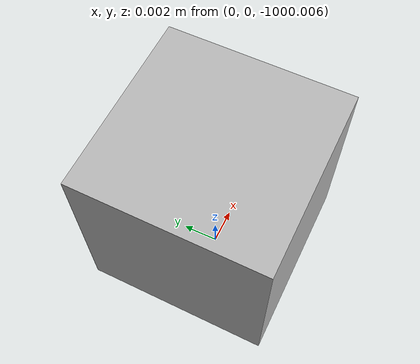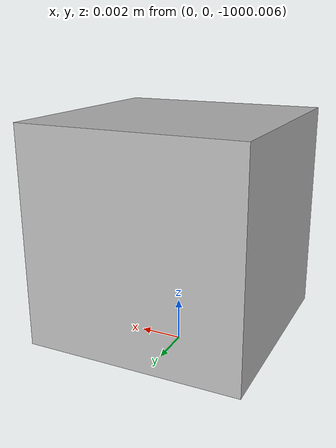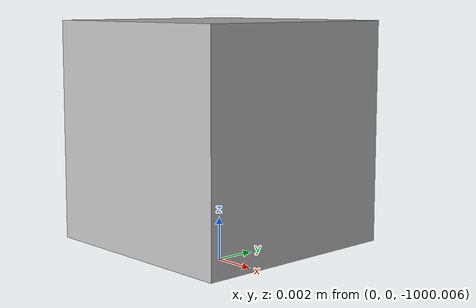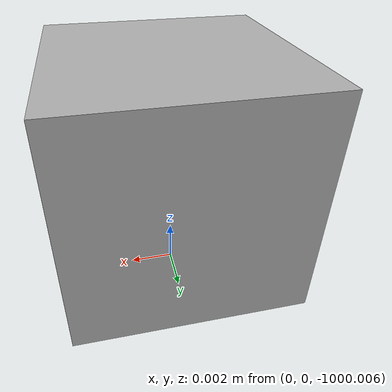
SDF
<?xml version="1.0" ?>
<!-- Minimal model so model://qr_wall resolves; geometry lives in world.sdf. -->
<sdf version="1.10">
  <model name="qr_wall">
    <static>true</static>
    <link name="link">
      <visual name="placeholder">
        <pose>0 0 -1000 0 0 0</pose>
        <geometry>
          <box>
            <size>0.01 0.01 0.01</size>
          </box>
        </geometry>
      </visual>
    </link>
  </model>
</sdf>
